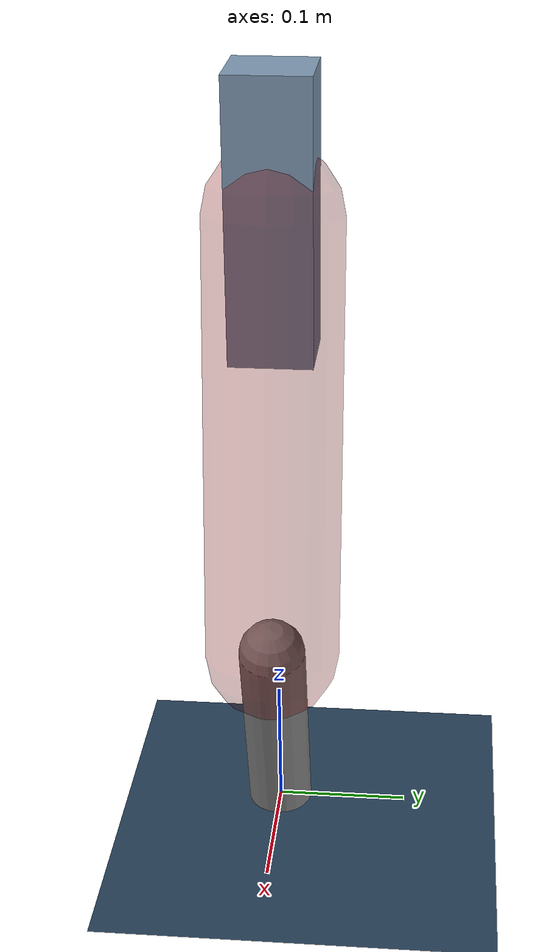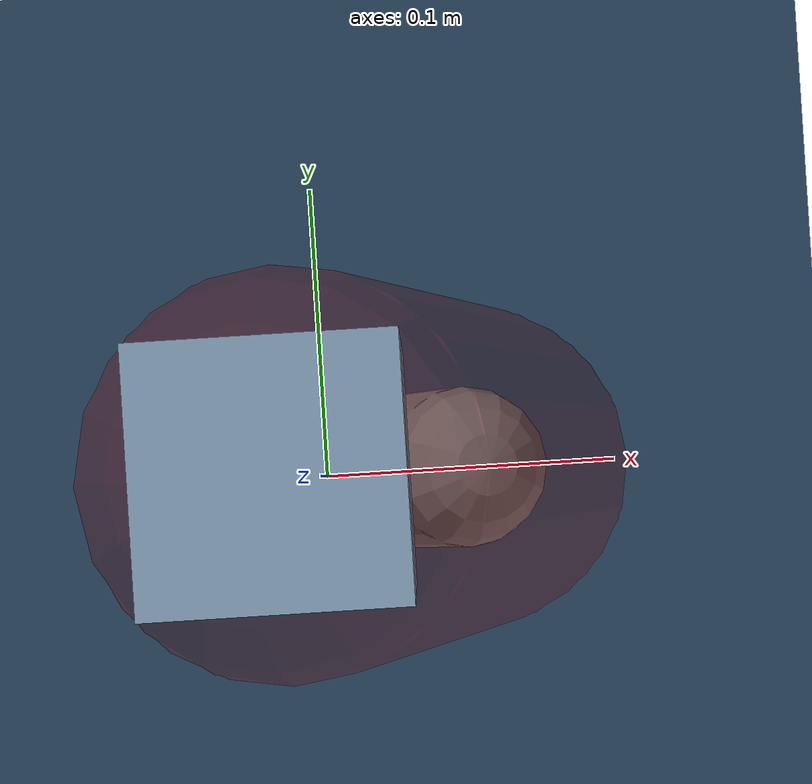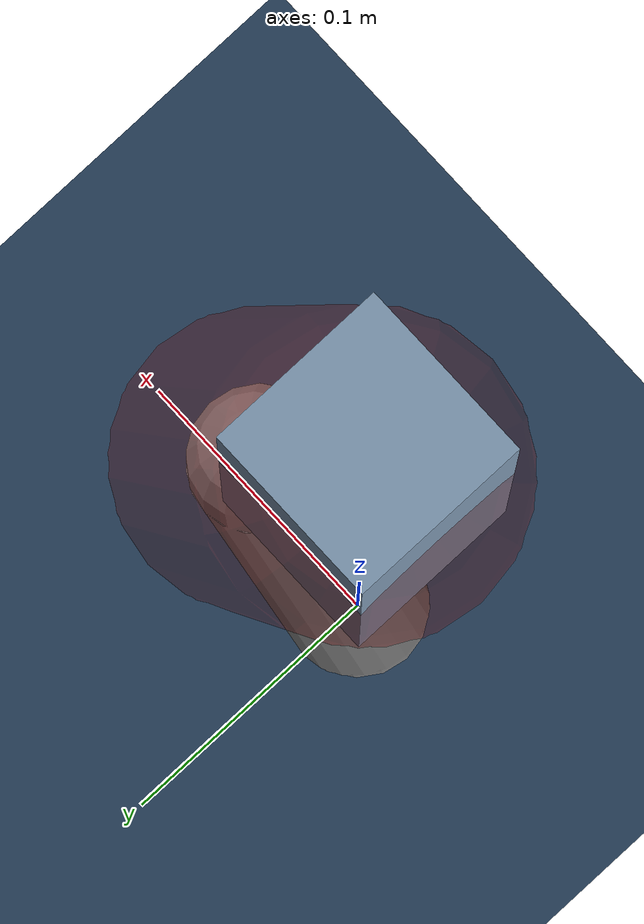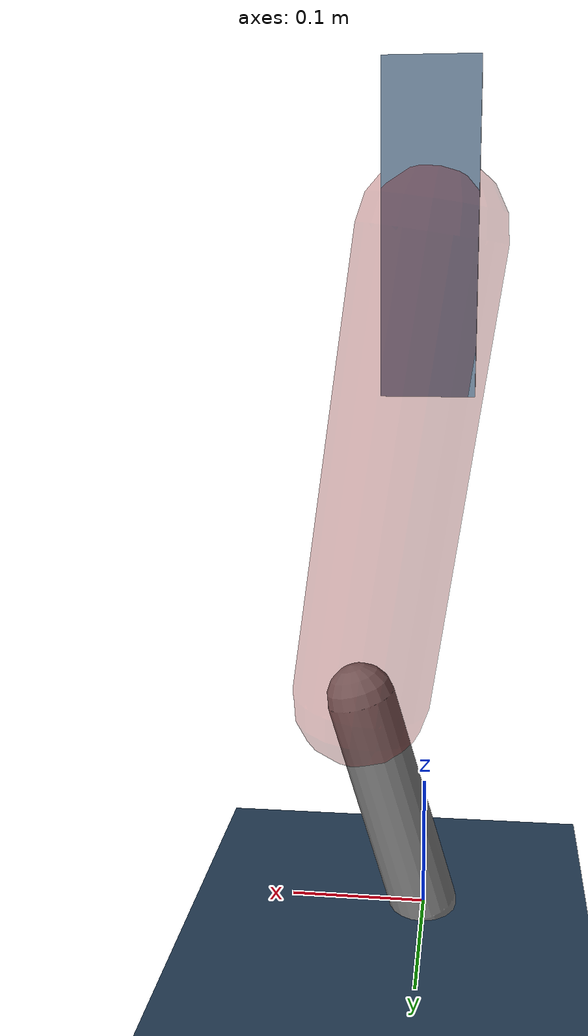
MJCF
<mujoco model="Hopper2D">
	<compiler inertiafromgeom="true" angle="radian" />
	<option timestep="0.001" integrator="implicit" cone="elliptic" solver="Newton" tolerance="1e-10" />

	<default>
		<geom contype="1" conaffinity="1" condim="3" friction="2 0.005 0.0001" solref="0.005 1" />
		<joint limited="true" damping="0.1" />
	</default>

	<asset>
		<texture name="skybox" type="skybox" builtin="gradient" rgb1=".4 .6 .8" rgb2="0 0 0" width="800" height="800" />
		<texture name="grid" type="2d" builtin="checker" rgb1=".1 .2 .3" rgb2=".2 .3 .4" width="300" height="300" mark="edge" markrgb=".2 .3 .4" />
		<material name="ground" texture="grid" texrepeat="1 1" texuniform="true" reflectance="0.1" />
		<material name="leg" rgba="0.5 0.6 0.7 1" />
	</asset>

	<worldbody>

		<geom name="floor" type="plane" size="5 5 0.25" material="ground" />

		<light directional="false" diffuse="0.8 0.8 0.8" specular="0.3 0.3 0.3" pos="0 0 2" dir="0 0 -1" />
		<light mode="targetbodycom" target="base" directional="false" diffuse="0.8 0.8 0.8" specular="0.3 0.3 0.3" pos="0 0 2" dir="0 0 -1" />

		<camera name="fixed" pos="0 -2 1" xyaxes="1 0 0 0 0 1" />
		<camera name="tracking" mode="trackcom" pos="0 -3 1" />

		<body name="root" pos="0 0 0.48565865903808564">
			<joint name="slide_x" type="slide" axis="1 0 0" range="-100 100" />
			<joint name="slide_z" type="slide" axis="0 0 1" range="0 10" />

			<body name="base" pos="0 0 0">
				<geom name="torso" type="box" size="0.03 0.03 0.1" mass="2.3899999999999997" material="leg" />

				<body name="link1" pos="0 0 0" euler="0 1.42528985934251 0">
					<joint type="hinge" axis="0 -1 0" pos="0 0 0" name="hinge1" limited="true" range="-3.14 3.14" stiffness="0" damping="0.1" />
					<geom name="thigh" type="capsule" fromto="0 0 0 0.3242491343283883 0 0" size="0.05" rgba="0.5 0 0 0.3" mass="1.0549726626866485" />

					<body name="link2" pos="0.3242491343283883 0 0" euler="0 0.4233463638828154 0">
						<joint type="hinge" axis="0 -1 0" pos="0 0 0" name="hinge2" limited="true" range="-3.14 3.14" stiffness="0" damping="0.1" />
						<geom name="shank" type="capsule" fromto="0 0 0 0.17140952470969734 0 0" size="0.025" mass="0.3764685722387276" />

					</body>
				</body>
			</body>
		</body>
	</worldbody>

	<actuator>
		<motor name="torque1" joint="hinge1" ctrlrange="-68.35492324305021 68.35492324305021" ctrllimited="true" gear="1" />
		<motor name="torque2" joint="hinge2" ctrlrange="-96.3654056721231 96.3654056721231" ctrllimited="true" gear="1" />
	</actuator>
</mujoco>
